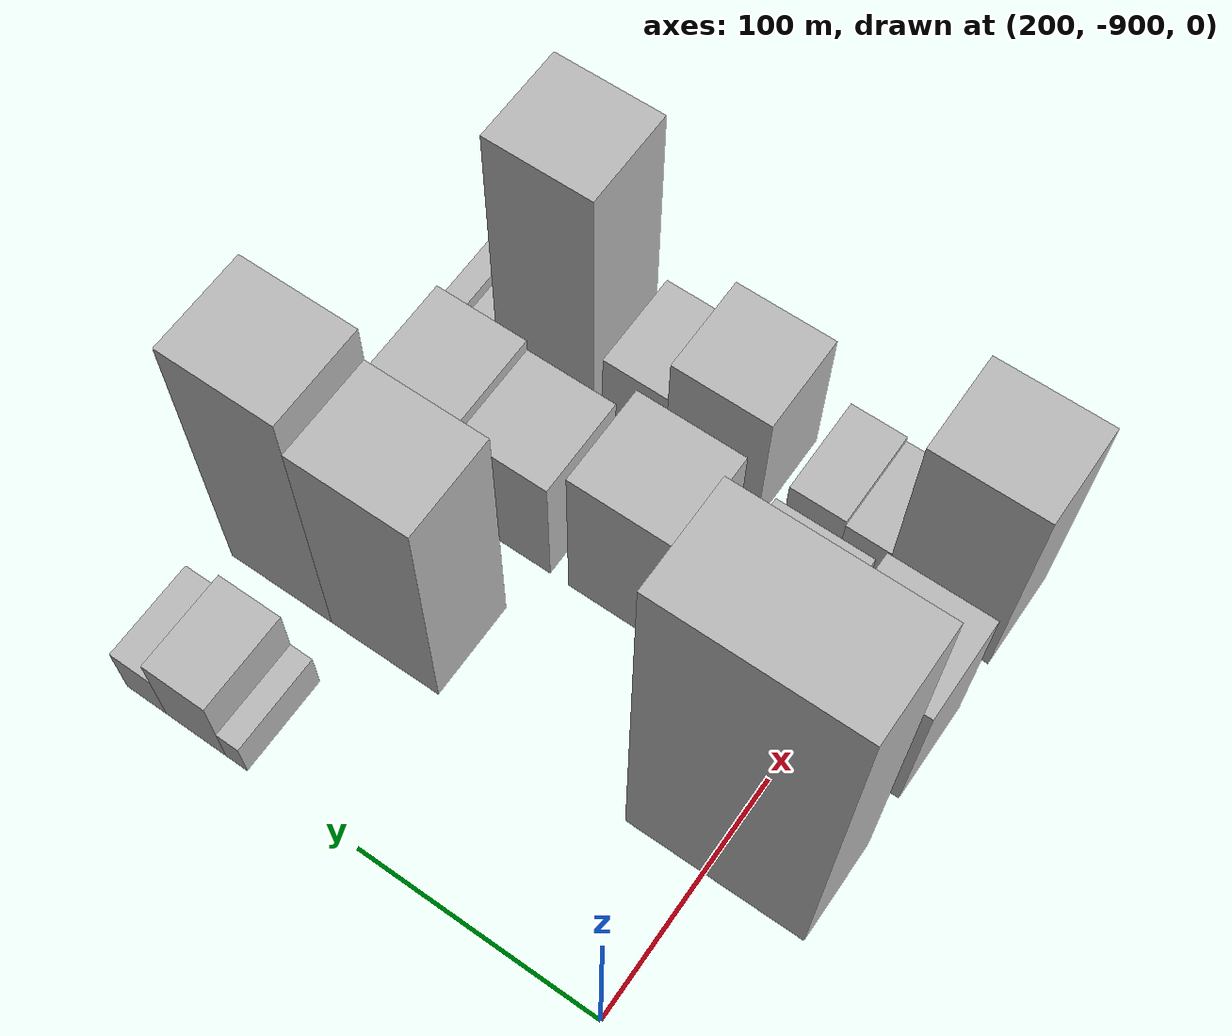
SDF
<sdf version="1.6">
 <world name="default">
  <model name="building_113">
   <static>1</static>
   <pose>220.0000 -747.3352 0 0.000000 0.000000 0.000000</pose>
   <link name="link">
    <pose>0 0 10.50 0 0 0</pose>
    <collision name="collision"><geometry><box><size>40.0000 9.5224 21.0000</size></box></geometry></collision>
    <visual name="visual">
     <cast_shadows>0</cast_shadows>
     <geometry><box><size>40.0000 9.5224 21.0000</size></box></geometry>
     <material>
      <script>
       <uri>model://HANNAS_wall/materials/scripts</uri>
       <uri>model://HANNAS_wall/materials/textures</uri>
       <name>vrc/HANNAS_wall</name>
      </script>
     </material>
    </visual>
   </link>
  </model>
  <model name="building_114">
   <static>1</static>
   <pose>220.0000 -729.2633 0 0.000000 0.000000 0.000000</pose>
   <link name="link">
    <pose>0 0 22.50 0 0 0</pose>
    <collision name="collision"><geometry><box><size>40.0000 26.6213 45.0000</size></box></geometry></collision>
    <visual name="visual">
     <cast_shadows>0</cast_shadows>
     <geometry><box><size>40.0000 26.6213 45.0000</size></box></geometry>
     <material>
      <script>
       <uri>model://HANNAS_wall/materials/scripts</uri>
       <uri>model://HANNAS_wall/materials/textures</uri>
       <name>vrc/HANNAS_wall</name>
      </script>
     </material>
    </visual>
   </link>
  </model>
  <model name="building_115">
   <static>1</static>
   <pose>220.0000 -707.0946 0 0.000000 0.000000 0.000000</pose>
   <link name="link">
    <pose>0 0 15.00 0 0 0</pose>
    <collision name="collision"><geometry><box><size>40.0000 17.7162 30.0000</size></box></geometry></collision>
    <visual name="visual">
     <cast_shadows>0</cast_shadows>
     <geometry><box><size>40.0000 17.7162 30.0000</size></box></geometry>
     <material>
      <script>
       <uri>model://HANNAS_wall/materials/scripts</uri>
       <uri>model://HANNAS_wall/materials/textures</uri>
       <name>vrc/HANNAS_wall</name>
      </script>
     </material>
    </visual>
   </link>
  </model>
  <model name="building_162">
   <static>1</static>
   <pose>280.0000 -904.1017 0 0.000000 0.000000 0.000000</pose>
   <link name="link">
    <pose>0 0 97.50 0 0 0</pose>
    <collision name="collision"><geometry><box><size>40.0000 71.7966 195.0000</size></box></geometry></collision>
    <visual name="visual">
     <cast_shadows>0</cast_shadows>
     <geometry><box><size>40.0000 71.7966 195.0000</size></box></geometry>
     <material>
      <script>
       <uri>model://HANNAS_wall/materials/scripts</uri>
       <uri>model://HANNAS_wall/materials/textures</uri>
       <name>vrc/HANNAS_wall</name>
      </script>
     </material>
    </visual>
   </link>
  </model>
  <model name="building_163">
   <static>1</static>
   <pose>280.0000 -765.3222 0 0.000000 0.000000 0.000000</pose>
   <link name="link">
    <pose>0 0 64.50 0 0 0</pose>
    <collision name="collision"><geometry><box><size>40.0000 47.2542 129.0000</size></box></geometry></collision>
    <visual name="visual">
     <cast_shadows>0</cast_shadows>
     <geometry><box><size>40.0000 47.2542 129.0000</size></box></geometry>
     <material>
      <script>
       <uri>model://HANNAS_wall/materials/scripts</uri>
       <uri>model://HANNAS_wall/materials/textures</uri>
       <name>vrc/HANNAS_wall</name>
      </script>
     </material>
    </visual>
   </link>
  </model>
  <model name="building_164">
   <static>1</static>
   <pose>280.0000 -718.9723 0 0.000000 0.000000 0.000000</pose>
   <link name="link">
    <pose>0 0 73.50 0 0 0</pose>
    <collision name="collision"><geometry><box><size>40.0000 45.4455 147.0000</size></box></geometry></collision>
    <visual name="visual">
     <cast_shadows>0</cast_shadows>
     <geometry><box><size>40.0000 45.4455 147.0000</size></box></geometry>
     <material>
      <script>
       <uri>model://HANNAS_wall/materials/scripts</uri>
       <uri>model://HANNAS_wall/materials/textures</uri>
       <name>vrc/HANNAS_wall</name>
      </script>
     </material>
    </visual>
   </link>
  </model>
  <model name="building_217">
   <static>1</static>
   <pose>340.0000 -919.4369 0 0.000000 0.000000 0.000000</pose>
   <link name="link">
    <pose>0 0 39.00 0 0 0</pose>
    <collision name="collision"><geometry><box><size>40.0000 41.1262 78.0000</size></box></geometry></collision>
    <visual name="visual">
     <cast_shadows>0</cast_shadows>
     <geometry><box><size>40.0000 41.1262 78.0000</size></box></geometry>
     <material>
      <script>
       <uri>model://HANNAS_wall/materials/scripts</uri>
       <uri>model://HANNAS_wall/materials/textures</uri>
       <name>vrc/HANNAS_wall</name>
      </script>
     </material>
    </visual>
   </link>
  </model>
  <model name="building_218">
   <static>1</static>
   <pose>340.0000 -876.7434 0 0.000000 0.000000 0.000000</pose>
   <link name="link">
    <pose>0 0 34.50 0 0 0</pose>
    <collision name="collision"><geometry><box><size>40.0000 38.2609 69.0000</size></box></geometry></collision>
    <visual name="visual">
     <cast_shadows>0</cast_shadows>
     <geometry><box><size>40.0000 38.2609 69.0000</size></box></geometry>
     <material>
      <script>
       <uri>model://HANNAS_wall/materials/scripts</uri>
       <uri>model://HANNAS_wall/materials/textures</uri>
       <name>vrc/HANNAS_wall</name>
      </script>
     </material>
    </visual>
   </link>
  </model>
  <model name="building_219">
   <static>1</static>
   <pose>340.0000 -851.4649 0 0.000000 0.000000 0.000000</pose>
   <link name="link">
    <pose>0 0 13.50 0 0 0</pose>
    <collision name="collision"><geometry><box><size>40.0000 12.2961 27.0000</size></box></geometry></collision>
    <visual name="visual">
     <cast_shadows>0</cast_shadows>
     <geometry><box><size>40.0000 12.2961 27.0000</size></box></geometry>
     <material>
      <script>
       <uri>model://HANNAS_wall/materials/scripts</uri>
       <uri>model://HANNAS_wall/materials/textures</uri>
       <name>vrc/HANNAS_wall</name>
      </script>
     </material>
    </visual>
   </link>
  </model>
  <model name="building_220">
   <static>1</static>
   <pose>340.0000 -823.6471 0 0.000000 0.000000 0.000000</pose>
   <link name="link">
    <pose>0 0 42.00 0 0 0</pose>
    <collision name="collision"><geometry><box><size>40.0000 43.3394 84.0000</size></box></geometry></collision>
    <visual name="visual">
     <cast_shadows>0</cast_shadows>
     <geometry><box><size>40.0000 43.3394 84.0000</size></box></geometry>
     <material>
      <script>
       <uri>model://HANNAS_wall/materials/scripts</uri>
       <uri>model://HANNAS_wall/materials/textures</uri>
       <name>vrc/HANNAS_wall</name>
      </script>
     </material>
    </visual>
   </link>
  </model>
  <model name="building_221">
   <static>1</static>
   <pose>340.0000 -775.6077 0 0.000000 0.000000 0.000000</pose>
   <link name="link">
    <pose>0 0 33.00 0 0 0</pose>
    <collision name="collision"><geometry><box><size>40.0000 36.7395 66.0000</size></box></geometry></collision>
    <visual name="visual">
     <cast_shadows>0</cast_shadows>
     <geometry><box><size>40.0000 36.7395 66.0000</size></box></geometry>
     <material>
      <script>
       <uri>model://HANNAS_wall/materials/scripts</uri>
       <uri>model://HANNAS_wall/materials/textures</uri>
       <name>vrc/HANNAS_wall</name>
      </script>
     </material>
    </visual>
   </link>
  </model>
  <model name="building_222">
   <static>1</static>
   <pose>340.0000 -738.3182 0 0.000000 0.000000 0.000000</pose>
   <link name="link">
    <pose>0 0 36.00 0 0 0</pose>
    <collision name="collision"><geometry><box><size>40.0000 37.8397 72.0000</size></box></geometry></collision>
    <visual name="visual">
     <cast_shadows>0</cast_shadows>
     <geometry><box><size>40.0000 37.8397 72.0000</size></box></geometry>
     <material>
      <script>
       <uri>model://HANNAS_wall/materials/scripts</uri>
       <uri>model://HANNAS_wall/materials/textures</uri>
       <name>vrc/HANNAS_wall</name>
      </script>
     </material>
    </visual>
   </link>
  </model>
  <model name="building_271">
   <static>1</static>
   <pose>400.0000 -917.4859 0 0.000000 0.000000 0.000000</pose>
   <link name="link">
    <pose>0 0 57.00 0 0 0</pose>
    <collision name="collision"><geometry><box><size>40.0000 45.0281 114.0000</size></box></geometry></collision>
    <visual name="visual">
     <cast_shadows>0</cast_shadows>
     <geometry><box><size>40.0000 45.0281 114.0000</size></box></geometry>
     <material>
      <script>
       <uri>model://HANNAS_wall/materials/scripts</uri>
       <uri>model://HANNAS_wall/materials/textures</uri>
       <name>vrc/HANNAS_wall</name>
      </script>
     </material>
    </visual>
   </link>
  </model>
  <model name="building_272">
   <static>1</static>
   <pose>400.0000 -885.6295 0 0.000000 0.000000 0.000000</pose>
   <link name="link">
    <pose>0 0 18.00 0 0 0</pose>
    <collision name="collision"><geometry><box><size>40.0000 18.6848 36.0000</size></box></geometry></collision>
    <visual name="visual">
     <cast_shadows>0</cast_shadows>
     <geometry><box><size>40.0000 18.6848 36.0000</size></box></geometry>
     <material>
      <script>
       <uri>model://HANNAS_wall/materials/scripts</uri>
       <uri>model://HANNAS_wall/materials/textures</uri>
       <name>vrc/HANNAS_wall</name>
      </script>
     </material>
    </visual>
   </link>
  </model>
  <model name="building_273">
   <static>1</static>
   <pose>400.0000 -864.7267 0 0.000000 0.000000 0.000000</pose>
   <link name="link">
    <pose>0 0 19.50 0 0 0</pose>
    <collision name="collision"><geometry><box><size>40.0000 23.1207 39.0000</size></box></geometry></collision>
    <visual name="visual">
     <cast_shadows>0</cast_shadows>
     <geometry><box><size>40.0000 23.1207 39.0000</size></box></geometry>
     <material>
      <script>
       <uri>model://HANNAS_wall/materials/scripts</uri>
       <uri>model://HANNAS_wall/materials/textures</uri>
       <name>vrc/HANNAS_wall</name>
      </script>
     </material>
    </visual>
   </link>
  </model>
  <model name="building_274">
   <static>1</static>
   <pose>400.0000 -822.7405 0 0.000000 0.000000 0.000000</pose>
   <link name="link">
    <pose>0 0 36.00 0 0 0</pose>
    <collision name="collision"><geometry><box><size>40.0000 40.8517 72.0000</size></box></geometry></collision>
    <visual name="visual">
     <cast_shadows>0</cast_shadows>
     <geometry><box><size>40.0000 40.8517 72.0000</size></box></geometry>
     <material>
      <script>
       <uri>model://HANNAS_wall/materials/scripts</uri>
       <uri>model://HANNAS_wall/materials/textures</uri>
       <name>vrc/HANNAS_wall</name>
      </script>
     </material>
    </visual>
   </link>
  </model>
  <model name="building_275">
   <static>1</static>
   <pose>400.0000 -788.5054 0 0.000000 0.000000 0.000000</pose>
   <link name="link">
    <pose>0 0 24.00 0 0 0</pose>
    <collision name="collision"><geometry><box><size>40.0000 27.6184 48.0000</size></box></geometry></collision>
    <visual name="visual">
     <cast_shadows>0</cast_shadows>
     <geometry><box><size>40.0000 27.6184 48.0000</size></box></geometry>
     <material>
      <script>
       <uri>model://HANNAS_wall/materials/scripts</uri>
       <uri>model://HANNAS_wall/materials/textures</uri>
       <name>vrc/HANNAS_wall</name>
      </script>
     </material>
    </visual>
   </link>
  </model>
  <model name="building_276">
   <static>1</static>
   <pose>400.0000 -748.9218 0 0.000000 0.000000 0.000000</pose>
   <link name="link">
    <pose>0 0 70.50 0 0 0</pose>
    <collision name="collision"><geometry><box><size>40.0000 43.5488 141.0000</size></box></geometry></collision>
    <visual name="visual">
     <cast_shadows>0</cast_shadows>
     <geometry><box><size>40.0000 43.5488 141.0000</size></box></geometry>
     <material>
      <script>
       <uri>model://HANNAS_wall/materials/scripts</uri>
       <uri>model://HANNAS_wall/materials/textures</uri>
       <name>vrc/HANNAS_wall</name>
      </script>
     </material>
    </visual>
   </link>
  </model>
  <model name="building_277">
   <static>1</static>
   <pose>400.0000 -721.7369 0 0.000000 0.000000 0.000000</pose>
   <link name="link">
    <pose>0 0 13.50 0 0 0</pose>
    <collision name="collision"><geometry><box><size>40.0000 10.8210 27.0000</size></box></geometry></collision>
    <visual name="visual">
     <cast_shadows>0</cast_shadows>
     <geometry><box><size>40.0000 10.8210 27.0000</size></box></geometry>
     <material>
      <script>
       <uri>model://HANNAS_wall/materials/scripts</uri>
       <uri>model://HANNAS_wall/materials/textures</uri>
       <name>vrc/HANNAS_wall</name>
      </script>
     </material>
    </visual>
   </link>
  </model>
  <model name="building_278">
   <static>1</static>
   <pose>400.0000 -706.3017 0 0.000000 0.000000 0.000000</pose>
   <link name="link">
    <pose>0 0 10.50 0 0 0</pose>
    <collision name="collision"><geometry><box><size>40.0000 10.0496 21.0000</size></box></geometry></collision>
    <visual name="visual">
     <cast_shadows>0</cast_shadows>
     <geometry><box><size>40.0000 10.0496 21.0000</size></box></geometry>
     <material>
      <script>
       <uri>model://HANNAS_wall/materials/scripts</uri>
       <uri>model://HANNAS_wall/materials/textures</uri>
       <name>vrc/HANNAS_wall</name>
      </script>
     </material>
    </visual>
   </link>
  </model>
 </world>
</sdf>
